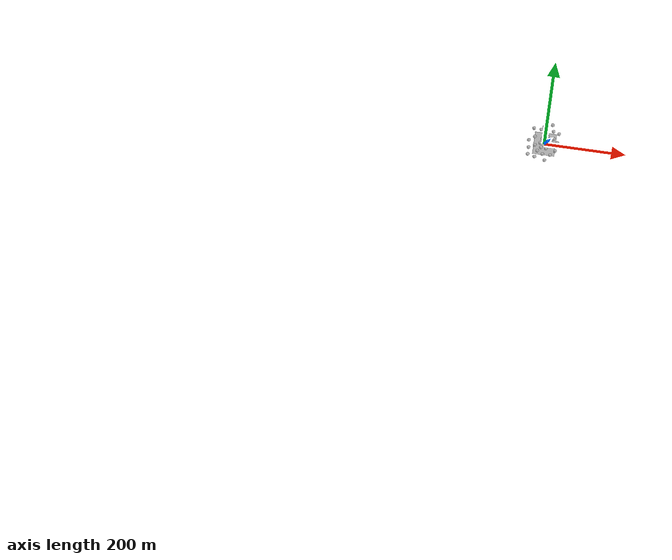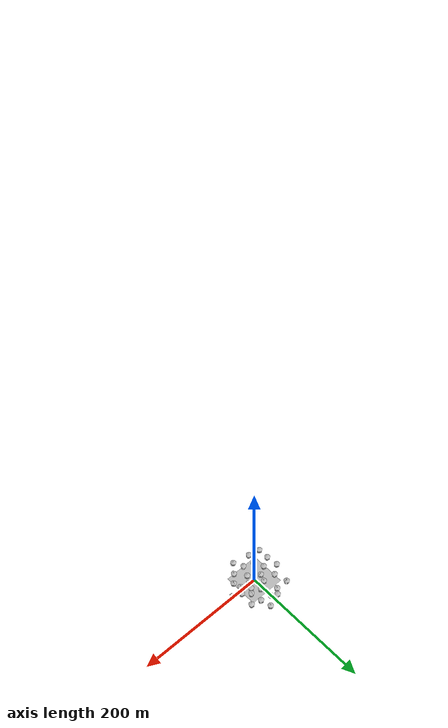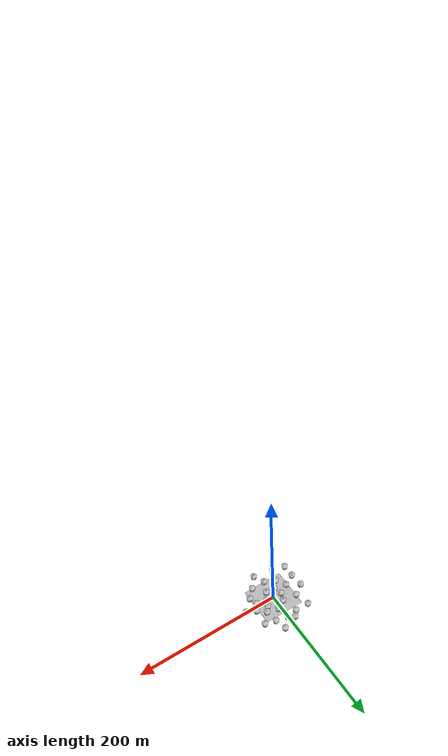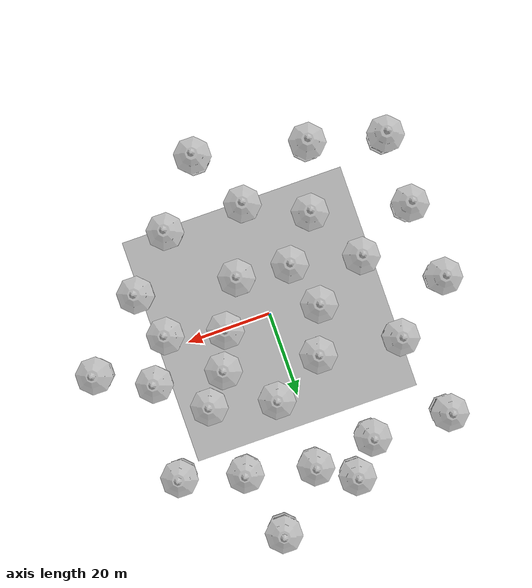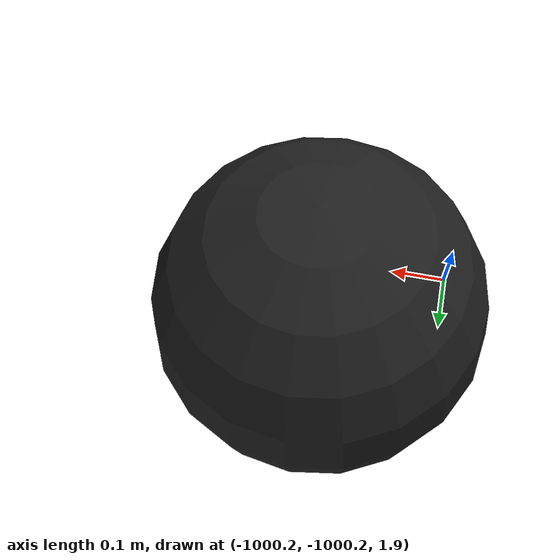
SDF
<sdf version="1.7">
 <world name="default">
  <plugin name="mrs_gazebo_static_transform_republisher_plugin" filename="libMrsGazeboCommonResources_StaticTransformRepublisher.so"/>
  <spherical_coordinates>
   <surface_model>EARTH_WGS84</surface_model>
   <latitude_deg>47.3977</latitude_deg>
   <longitude_deg>8.54559</longitude_deg>
   <elevation>0</elevation>
   <heading_deg>0</heading_deg>
  </spherical_coordinates>
  <physics name="default_physics" default="0" type="ode">
   <ode>
    <solver>
     <type>quick</type>
     <iters>10</iters>
     <sor>1.3</sor>
     <use_dynamic_moi_rescaling>0</use_dynamic_moi_rescaling>
    </solver>
    <constraints>
     <cfm>0</cfm>
     <erp>0.2</erp>
     <contact_max_correcting_vel>1000</contact_max_correcting_vel>
     <contact_surface_layer>0.001</contact_surface_layer>
    </constraints>
   </ode>
   <max_step_size>0.004</max_step_size>
   <real_time_factor>1</real_time_factor>
   <real_time_update_rate>250</real_time_update_rate>
  </physics>
  <scene><shadows>0</shadows><ambient>0.4 0.4 0.4 1</ambient><background>0.7 0.7 0.7 1</background></scene>
  <light name="sun" type="directional">
   <pose>0 0 1000 0.4 0.2 0</pose>
   <diffuse>1 1 1 1</diffuse>
   <specular>0.6 0.6 0.6 1</specular>
   <direction>0.1 0.1 -0.9</direction>
   <attenuation>
    <range>20</range>
    <constant>0.5</constant>
    <linear>0.01</linear>
    <quadratic>0.001</quadratic>
   </attenuation>
   <spot><inner_angle>0</inner_angle><outer_angle>0</outer_angle><falloff>0</falloff></spot>
  </light>
  <model name="ground_plane">
   <static>1</static>
   <link name="link">
    <collision name="collision">
     <geometry><plane><normal>0 0 1</normal><size>250 250</size></plane></geometry>
     <surface><friction><ode><mu>1</mu><mu2>1</mu2></ode></friction></surface>
    </collision>
    <visual name="grass">
     <cast_shadows>0</cast_shadows>
     <geometry><mesh><uri>file://grass_plane/meshes/grass_plane.dae</uri></mesh></geometry>
    </visual>
   </link>
  </model>
  <model name="the_void">
   <static>1</static>
   <link name="link">
    <pose>0 0 0.1 0 -0 0</pose>
    <visual name="the_void">
     <pose>0 0 2 0 -0 0</pose>
     <geometry><sphere><radius>0.25</radius></sphere></geometry>
     <material>
      <script><uri>file://media/materials/scripts/Gazebo.material</uri><name>Gazebo/Black</name></script>
     </material>
    </visual>
   </link>
   <pose>-1000 -1000 0 0 -0 0</pose>
  </model>
  <plugin name="mrs_gazebo_rviz_cam_synchronizer" filename="libMrsGazeboCommonResources_RvizCameraSynchronizer.so">
   <target_frame_id>gazebo_user_camera</target_frame_id>
   <world_origin_frame_id>uav1/gps_origin</world_origin_frame_id>
   <frame_to_follow>uav1</frame_to_follow>
  </plugin>
  <gravity>0 0 -9.8066</gravity>
  <magnetic_field>6e-06 2.3e-05 -4.2e-05</magnetic_field>
  <atmosphere type="adiabatic"/>
  <model name="gazebo">
   <static>1</static>
   <link name="link">
    <collision name="collision">
     <geometry><mesh><scale>3 3 2.5</scale><uri>model://gazebo/meshes/gazebo.dae</uri></mesh></geometry>
    </collision>
    <visual name="visual">
     <geometry><mesh><scale>3 3 2.5</scale><uri>model://gazebo/meshes/gazebo.dae</uri></mesh></geometry>
    </visual>
   </link>
   <pose>-11.3938 1.61595 0 0 -0 0</pose>
  </model>
  <model name="gazebo_0">
   <static>1</static>
   <link name="link">
    <collision name="collision">
     <geometry><mesh><scale>3 3 2.5</scale><uri>model://gazebo/meshes/gazebo.dae</uri></mesh></geometry>
    </collision>
    <visual name="visual">
     <geometry><mesh><scale>3 3 2.5</scale><uri>model://gazebo/meshes/gazebo.dae</uri></mesh></geometry>
    </visual>
   </link>
   <pose>-8.08679 -9.15466 0 0 -0 0</pose>
  </model>
  <model name="gazebo_1">
   <static>1</static>
   <link name="link">
    <collision name="collision">
     <geometry><mesh><scale>3 3 2.5</scale><uri>model://gazebo/meshes/gazebo.dae</uri></mesh></geometry>
    </collision>
    <visual name="visual">
     <geometry><mesh><scale>3 3 2.5</scale><uri>model://gazebo/meshes/gazebo.dae</uri></mesh></geometry>
    </visual>
   </link>
   <pose>4.31667 -10.2888 0 0 -0 0</pose>
  </model>
  <model name="gazebo_2">
   <static>1</static>
   <link name="link">
    <collision name="collision">
     <geometry><mesh><scale>3 3 2.5</scale><uri>model://gazebo/meshes/gazebo.dae</uri></mesh></geometry>
    </collision>
    <visual name="visual">
     <geometry><mesh><scale>3 3 2.5</scale><uri>model://gazebo/meshes/gazebo.dae</uri></mesh></geometry>
    </visual>
   </link>
   <pose>10.6511 0.176847 0 0 -0 0</pose>
  </model>
  <model name="gazebo_3">
   <static>1</static>
   <link name="link">
    <collision name="collision">
     <geometry><mesh><scale>3 3 2.5</scale><uri>model://gazebo/meshes/gazebo.dae</uri></mesh></geometry>
    </collision>
    <visual name="visual">
     <geometry><mesh><scale>3 3 2.5</scale><uri>model://gazebo/meshes/gazebo.dae</uri></mesh></geometry>
    </visual>
   </link>
   <pose>-7.42986 12.3906 0 0 -0 0</pose>
  </model>
  <model name="gazebo_4">
   <static>1</static>
   <link name="link">
    <collision name="collision">
     <geometry><mesh><scale>3 3 2.5</scale><uri>model://gazebo/meshes/gazebo.dae</uri></mesh></geometry>
    </collision>
    <visual name="visual">
     <geometry><mesh><scale>3 3 2.5</scale><uri>model://gazebo/meshes/gazebo.dae</uri></mesh></geometry>
    </visual>
   </link>
   <pose>4.83881 19.0381 0 0 -0 0</pose>
  </model>
  <model name="gazebo_clone">
   <static>1</static>
   <link name="link">
    <collision name="collision">
     <geometry><mesh><scale>3 3 2.5</scale><uri>model://gazebo/meshes/gazebo.dae</uri></mesh></geometry>
    </collision>
    <visual name="visual">
     <geometry><mesh><scale>3 3 2.5</scale><uri>model://gazebo/meshes/gazebo.dae</uri></mesh></geometry>
    </visual>
   </link>
   <pose>-24.0507 -5.64413 0 0 -0 0</pose>
  </model>
  <model name="gazebo_clone_0">
   <static>1</static>
   <link name="link">
    <collision name="collision">
     <geometry><mesh><scale>3 3 2.5</scale><uri>model://gazebo/meshes/gazebo.dae</uri></mesh></geometry>
    </collision>
    <visual name="visual">
     <geometry><mesh><scale>3 3 2.5</scale><uri>model://gazebo/meshes/gazebo.dae</uri></mesh></geometry>
    </visual>
   </link>
   <pose>-16.3123 -18.8297 0 0 -0 0</pose>
  </model>
  <model name="gazebo_clone_1">
   <static>1</static>
   <link name="link">
    <collision name="collision">
     <geometry><mesh><scale>3 3 2.5</scale><uri>model://gazebo/meshes/gazebo.dae</uri></mesh></geometry>
    </collision>
    <visual name="visual">
     <geometry><mesh><scale>3 3 2.5</scale><uri>model://gazebo/meshes/gazebo.dae</uri></mesh></geometry>
    </visual>
   </link>
   <pose>-2.4375 -25.6476 0 0 -0 0</pose>
  </model>
  <model name="gazebo_clone_2">
   <static>1</static>
   <link name="link">
    <collision name="collision">
     <geometry><mesh><scale>3 3 2.5</scale><uri>model://gazebo/meshes/gazebo.dae</uri></mesh></geometry>
    </collision>
    <visual name="visual">
     <geometry><mesh><scale>3 3 2.5</scale><uri>model://gazebo/meshes/gazebo.dae</uri></mesh></geometry>
    </visual>
   </link>
   <pose>16.2054 -25.5501 0 0 -0 0</pose>
  </model>
  <model name="gazebo_clone_3">
   <static>1</static>
   <link name="link">
    <collision name="collision">
     <geometry><mesh><scale>3 3 2.5</scale><uri>model://gazebo/meshes/gazebo.dae</uri></mesh></geometry>
    </collision>
    <visual name="visual">
     <geometry><mesh><scale>3 3 2.5</scale><uri>model://gazebo/meshes/gazebo.dae</uri></mesh></geometry>
    </visual>
   </link>
   <pose>27.2784 -14.1396 0 0 -0 0</pose>
  </model>
  <model name="gazebo_clone_4">
   <static>1</static>
   <link name="link">
    <collision name="collision">
     <geometry><mesh><scale>3 3 2.5</scale><uri>model://gazebo/meshes/gazebo.dae</uri></mesh></geometry>
    </collision>
    <visual name="visual">
     <geometry><mesh><scale>3 3 2.5</scale><uri>model://gazebo/meshes/gazebo.dae</uri></mesh></geometry>
    </visual>
   </link>
   <pose>29.9182 6.39444 0 0 -0 0</pose>
  </model>
  <model name="gazebo_clone_5">
   <static>1</static>
   <link name="link">
    <collision name="collision">
     <geometry><mesh><scale>3 3 2.5</scale><uri>model://gazebo/meshes/gazebo.dae</uri></mesh></geometry>
    </collision>
    <visual name="visual">
     <geometry><mesh><scale>3 3 2.5</scale><uri>model://gazebo/meshes/gazebo.dae</uri></mesh></geometry>
    </visual>
   </link>
   <pose>19.8435 15.3608 0 0 -0 0</pose>
  </model>
  <model name="gazebo_clone_6">
   <static>1</static>
   <link name="link">
    <collision name="collision">
     <geometry><mesh><scale>3 3 2.5</scale><uri>model://gazebo/meshes/gazebo.dae</uri></mesh></geometry>
    </collision>
    <visual name="visual">
     <geometry><mesh><scale>3 3 2.5</scale><uri>model://gazebo/meshes/gazebo.dae</uri></mesh></geometry>
    </visual>
   </link>
   <pose>17.1712 32.4961 0 0 -0 0</pose>
  </model>
  <model name="gazebo_clone_7">
   <static>1</static>
   <link name="link">
    <collision name="collision">
     <geometry><mesh><scale>3 3 2.5</scale><uri>model://gazebo/meshes/gazebo.dae</uri></mesh></geometry>
    </collision>
    <visual name="visual">
     <geometry><mesh><scale>3 3 2.5</scale><uri>model://gazebo/meshes/gazebo.dae</uri></mesh></geometry>
    </visual>
   </link>
   <pose>1.52644 36.1921 0 0 -0 0</pose>
  </model>
  <model name="gazebo_clone_8">
   <static>1</static>
   <link name="link">
    <collision name="collision">
     <geometry><mesh><scale>3 3 2.5</scale><uri>model://gazebo/meshes/gazebo.dae</uri></mesh></geometry>
    </collision>
    <visual name="visual">
     <geometry><mesh><scale>3 3 2.5</scale><uri>model://gazebo/meshes/gazebo.dae</uri></mesh></geometry>
    </visual>
   </link>
   <pose>-12.8982 34.1433 0 0 -0 0</pose>
  </model>
  <model name="gazebo_clone_9">
   <static>1</static>
   <link name="link">
    <collision name="collision">
     <geometry><mesh><scale>3 3 2.5</scale><uri>model://gazebo/meshes/gazebo.dae</uri></mesh></geometry>
    </collision>
    <visual name="visual">
     <geometry><mesh><scale>3 3 2.5</scale><uri>model://gazebo/meshes/gazebo.dae</uri></mesh></geometry>
    </visual>
   </link>
   <pose>-26.4525 14.8167 0 0 -0 0</pose>
  </model>
  <model name="gazebo_clone_10">
   <static>1</static>
   <link name="link">
    <collision name="collision">
     <geometry><mesh><scale>3 3 2.5</scale><uri>model://gazebo/meshes/gazebo.dae</uri></mesh></geometry>
    </collision>
    <visual name="visual">
     <geometry><mesh><scale>3 3 2.5</scale><uri>model://gazebo/meshes/gazebo.dae</uri></mesh></geometry>
    </visual>
   </link>
   <pose>-40.1867 4.88963 0 0 -0 0</pose>
  </model>
  <model name="gazebo_clone_11">
   <static>1</static>
   <link name="link">
    <collision name="collision">
     <geometry><mesh><scale>3 3 2.5</scale><uri>model://gazebo/meshes/gazebo.dae</uri></mesh></geometry>
    </collision>
    <visual name="visual">
     <geometry><mesh><scale>3 3 2.5</scale><uri>model://gazebo/meshes/gazebo.dae</uri></mesh></geometry>
    </visual>
   </link>
   <pose>-38.4651 -13.2676 0 0 -0 0</pose>
  </model>
  <model name="gazebo_clone_12">
   <static>1</static>
   <link name="link">
    <collision name="collision">
     <geometry><mesh><scale>3 3 2.5</scale><uri>model://gazebo/meshes/gazebo.dae</uri></mesh></geometry>
    </collision>
    <visual name="visual">
     <geometry><mesh><scale>3 3 2.5</scale><uri>model://gazebo/meshes/gazebo.dae</uri></mesh></geometry>
    </visual>
   </link>
   <pose>-21.0498 -34.2086 0 0 -0 0</pose>
  </model>
  <model name="gazebo_clone_13">
   <static>1</static>
   <link name="link">
    <collision name="collision">
     <geometry><mesh><scale>3 3 2.5</scale><uri>model://gazebo/meshes/gazebo.dae</uri></mesh></geometry>
    </collision>
    <visual name="visual">
     <geometry><mesh><scale>3 3 2.5</scale><uri>model://gazebo/meshes/gazebo.dae</uri></mesh></geometry>
    </visual>
   </link>
   <pose>4.63606 -39.7613 0 0 -0 0</pose>
  </model>
  <model name="gazebo_clone_14">
   <static>1</static>
   <link name="link">
    <collision name="collision">
     <geometry><mesh><scale>3 3 2.5</scale><uri>model://gazebo/meshes/gazebo.dae</uri></mesh></geometry>
    </collision>
    <visual name="visual">
     <geometry><mesh><scale>3 3 2.5</scale><uri>model://gazebo/meshes/gazebo.dae</uri></mesh></geometry>
    </visual>
   </link>
   <pose>14.0894 8.65089 0 0 -0 0</pose>
  </model>
  <model name="gazebo_clone_15">
   <static>1</static>
   <link name="link">
    <collision name="collision">
     <geometry><mesh><scale>3 3 2.5</scale><uri>model://gazebo/meshes/gazebo.dae</uri></mesh></geometry>
    </collision>
    <visual name="visual">
     <geometry><mesh><scale>3 3 2.5</scale><uri>model://gazebo/meshes/gazebo.dae</uri></mesh></geometry>
    </visual>
   </link>
   <pose>31.6178 28.4849 0 0 -0 0</pose>
  </model>
  <model name="gazebo_clone_16">
   <static>1</static>
   <link name="link">
    <collision name="collision">
     <geometry><mesh><scale>3 3 2.5</scale><uri>model://gazebo/meshes/gazebo.dae</uri></mesh></geometry>
    </collision>
    <visual name="visual">
     <geometry><mesh><scale>3 3 2.5</scale><uri>model://gazebo/meshes/gazebo.dae</uri></mesh></geometry>
    </visual>
   </link>
   <pose>13.402 48.2797 0 0 -0 0</pose>
  </model>
  <model name="gazebo_clone_17">
   <static>1</static>
   <link name="link">
    <collision name="collision">
     <geometry><mesh><scale>3 3 2.5</scale><uri>model://gazebo/meshes/gazebo.dae</uri></mesh></geometry>
    </collision>
    <visual name="visual">
     <geometry><mesh><scale>3 3 2.5</scale><uri>model://gazebo/meshes/gazebo.dae</uri></mesh></geometry>
    </visual>
   </link>
   <pose>42.1454 0.082313 0 0 -0 0</pose>
  </model>
  <model name="gazebo_clone_18">
   <static>1</static>
   <link name="link">
    <collision name="collision">
     <geometry><mesh><scale>3 3 2.5</scale><uri>model://gazebo/meshes/gazebo.dae</uri></mesh></geometry>
    </collision>
    <visual name="visual">
     <geometry><mesh><scale>3 3 2.5</scale><uri>model://gazebo/meshes/gazebo.dae</uri></mesh></geometry>
    </visual>
   </link>
   <pose>-31.2915 34.6152 0 0 -0 0</pose>
  </model>
  <model name="gazebo_clone_19">
   <static>1</static>
   <link name="link">
    <collision name="collision">
     <geometry><mesh><scale>3 3 2.5</scale><uri>model://gazebo/meshes/gazebo.dae</uri></mesh></geometry>
    </collision>
    <visual name="visual">
     <geometry><mesh><scale>3 3 2.5</scale><uri>model://gazebo/meshes/gazebo.dae</uri></mesh></geometry>
    </visual>
   </link>
   <pose>-6.68958 41.4099 0 0 -0 0</pose>
  </model>
  <model name="gazebo_clone_20">
   <static>1</static>
   <link name="link">
    <collision name="collision">
     <geometry><mesh><scale>3 3 2.5</scale><uri>model://gazebo/meshes/gazebo.dae</uri></mesh></geometry>
    </collision>
    <visual name="visual">
     <geometry><mesh><scale>3 3 2.5</scale><uri>model://gazebo/meshes/gazebo.dae</uri></mesh></geometry>
    </visual>
   </link>
   <pose>23.9564 -3.1473 0 0 -0 0</pose>
  </model>
  <model name="gazebo_clone_21">
   <static>1</static>
   <link name="link">
    <collision name="collision">
     <geometry><mesh><scale>3 3 2.5</scale><uri>model://gazebo/meshes/gazebo.dae</uri></mesh></geometry>
    </collision>
    <visual name="visual">
     <geometry><mesh><scale>3 3 2.5</scale><uri>model://gazebo/meshes/gazebo.dae</uri></mesh></geometry>
    </visual>
   </link>
   <pose>-38.378 -29.9493 0 0 -0 0</pose>
  </model>
 </world>
</sdf>
